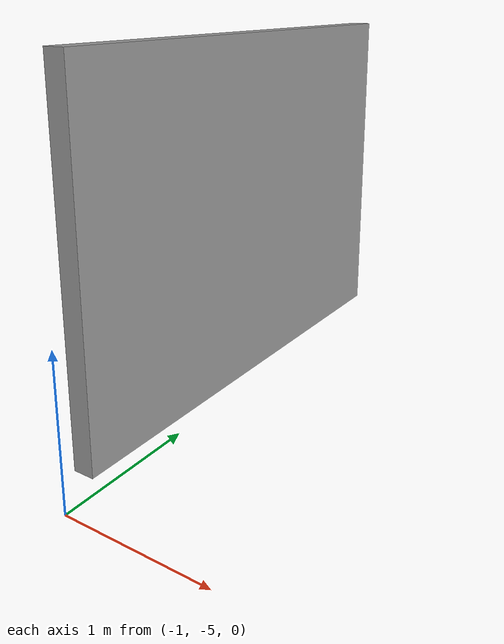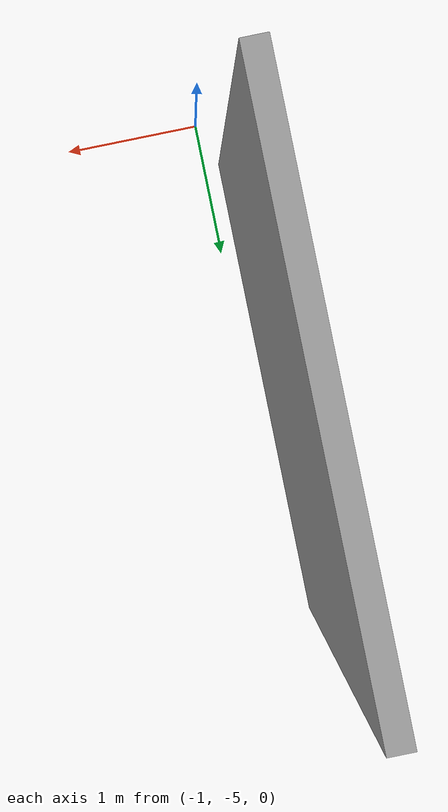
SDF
<?xml version='1.0'?>
<sdf version='1.7'>
  <model name='pap5-2'>
    <pose>-0.6325 -2.3375 0 0 -0 0</pose>
    <link name='Wall_0'>
      <collision name='Wall_0_Collision'>
        <geometry>
          <box>
            <size>3.5 0.15 2.5</size>
          </box>
        </geometry>
        <pose>0 0 1.25 0 -0 0</pose>
      </collision>
      <visual name='Wall_0_Visual'>
        <pose>0 0 1.25 0 -0 0</pose>
        <geometry>
          <box>
            <size>3.5 0.15 2.5</size>
          </box>
        </geometry>
        <material>
          <script>
            <uri>file://media/materials/scripts/gazebo.material</uri>
            <name>Gazebo/Grey</name>
          </script>
          <ambient>1 1 1 1</ambient>
        </material>
        <meta>
          <layer>0</layer>
        </meta>
      </visual>
      <pose>-0.5575 -0.5875 0 0 -0 -1.5708</pose>
    </link>
    <static>1</static>
  </model>
</sdf>
